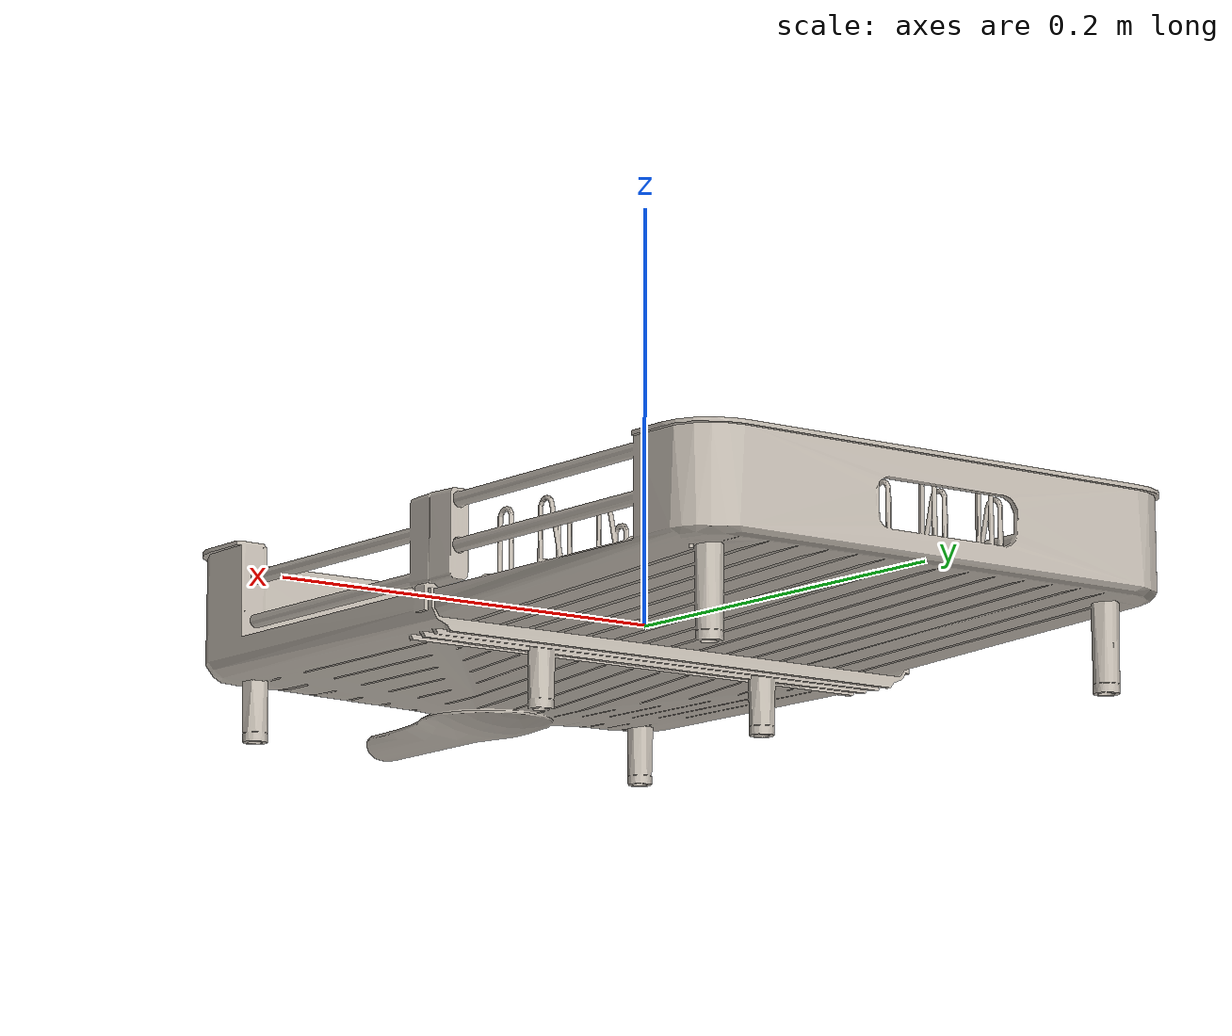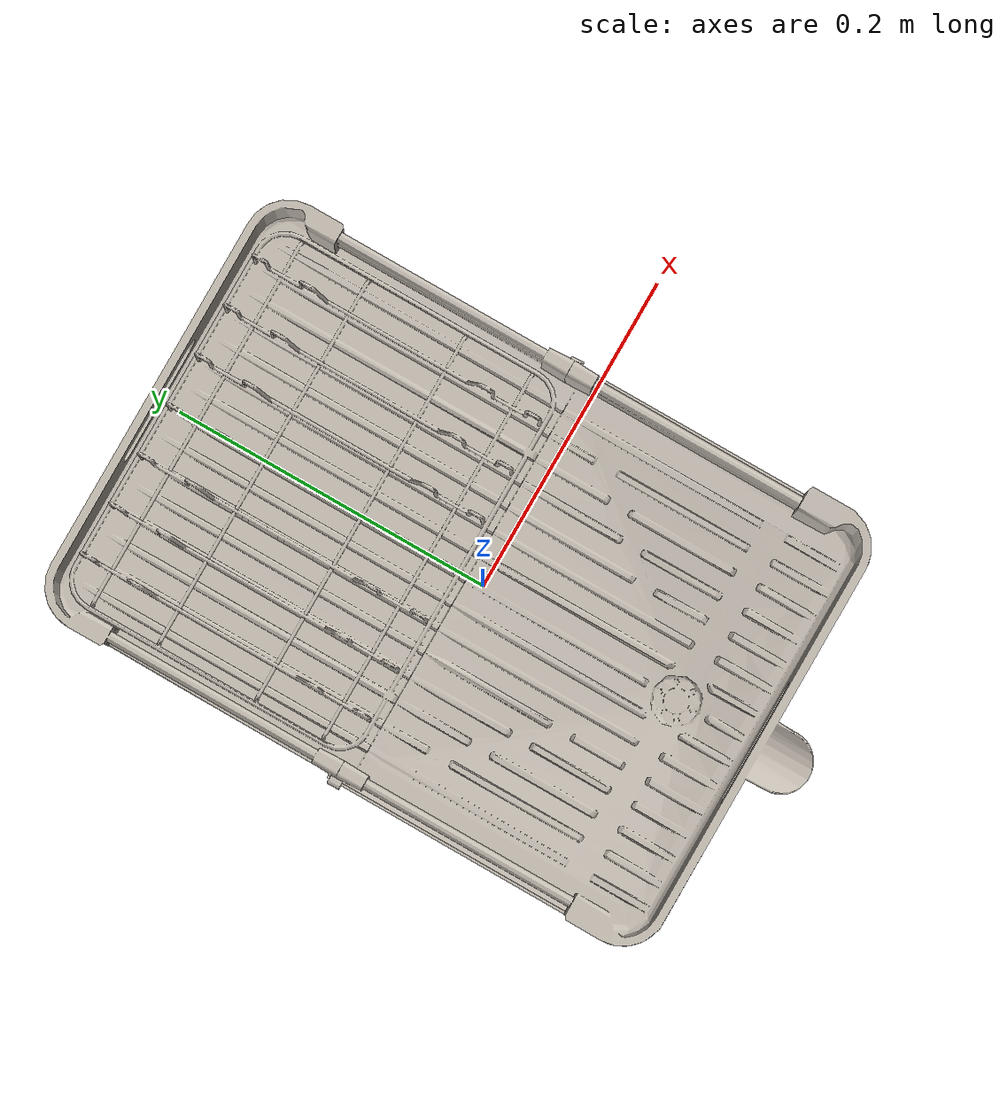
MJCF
<mujoco model="model">
  <option timestep="0.002" gravity="0.0 0.0 -9.81" />
  <compiler angle="radian" />
  <asset>
    <mesh file="visual/DishRack043.obj" name="DishRack043_vis" scale="0.8 0.8 0.8" />
    <texture file="visual/T_BC001.png" name="DishRack043_material" type="2d" />
    <material name="DishRack043_material" rgba="1 1 1 1.0" texture="DishRack043_material" shininess="0.4472135901451111" specular="0.3103448502657381" />
  </asset>
  <default>
    <default class="visual">
      <geom conaffinity="0" contype="0" group="2" type="mesh" density="0" />
    </default>
    <default class="collision">
      <geom group="3" rgba="1 1 1 0.25" density="0" friction="1.2" />
    </default>
    <default class="spawn">
      <geom group="0" rgba="1 1 1 0.5" contype="0" conaffinity="0" />
      <site group="0" rgba="1 1 1 0.5" />
    </default>
    <default class="region">
      <geom group="1" conaffinity="0" contype="0" rgba="0 1 0 0" mass="0" />
    </default>
  </default>
  <worldbody>
    <body>
      <body name="object">
        <geom mesh="DishRack043_vis" type="mesh" class="visual" material="DishRack043_material" group="2" contype="0" conaffinity="0" density="0" mass="0.5" />
        <geom type="box" pos="0.031169728 0.205674056 0.017716304" size="0.00175487063825 0.00131378648803 0.0197576954961" quat="1.0 0.0 0.0 0.0" class="collision" group="3" rgba="0 0 0 0" density="0" friction="1.2" />
        <geom type="box" pos="0.031169728 0.202083112 0.039842328" size="0.00175487063825 0.00208327099681 0.00131378676742" quat="1.0 0.0 0.0 0.0" class="collision" group="3" rgba="0 0 0 0" density="0" friction="1.2" />
        <geom type="box" pos="0.031169728 0.205198696 0.03883036" size="0.00175487063825 0.00131378648803 0.00208327081054" quat="0.9381337761878967 0.3462730050086975 0.0 0.0" class="collision" group="3" rgba="0 0 0 0" density="0" friction="1.2" />
        <geom type="box" pos="0.031169728 0.198713208 0.03883036" size="0.00175487063825 0.00131378648803 0.00208327081054" quat="0.9381337761878967 -0.3462729752063751 -0.0 0.0" class="collision" group="3" rgba="0 0 0 0" density="0" friction="1.2" />
        <geom type="box" pos="0.031169728 0.197106936 0.021901056" size="0.00175487063825 0.00131378648803 0.0155729487539" quat="1.0 0.0 0.0 0.0" class="collision" group="3" rgba="0 0 0 0" density="0" friction="1.2" />
        <geom type="box" pos="0.031169728 0.18682908 0.00721552" size="0.00175487063825 0.0109961859882 0.00131378779188" quat="1.0 0.0 0.0 0.0" class="collision" group="3" rgba="0 0 0 0" density="0" friction="1.2" />
        <geom type="box" pos="0.031169728 0.17424564 0.03883036" size="0.00175487063825 0.00131378648803 0.00208327081054" quat="0.9381337761878967 0.3462730050086975 0.0 0.0" class="collision" group="3" rgba="0 0 0 0" density="0" friction="1.2" />
        <geom type="box" pos="0.031169728 0.171130064 0.039842328" size="0.00175487063825 0.00208327099681 0.00131378676742" quat="1.0 0.0 0.0 0.0" class="collision" group="3" rgba="0 0 0 0" density="0" friction="1.2" />
        <geom type="box" pos="0.031169728 0.174782488 0.021724864" size="0.00175487063825 0.00131378648803 0.0157491385937" quat="1.0 0.0 0.0 0.0" class="collision" group="3" rgba="0 0 0 0" density="0" friction="1.2" />
        <geom type="box" pos="0.031169728 0.16754892 0.03883036" size="0.00175487063825 0.00131378648803 0.00208327081054" quat="0.9381337761878967 -0.3462729752063751 -0.0 0.0" class="collision" group="3" rgba="0 0 0 0" density="0" friction="1.2" />
        <geom type="box" pos="0.129307072 0.1011498 0.017551096" size="0.00343731679022 0.0686911225319 0.00354711599648" quat="1.0 0.0 0.0 0.0" class="collision" group="3" rgba="0 0 0 0" density="0" friction="1.2" />
        <geom type="box" pos="0.031169728 0.162053848 0.021771864" size="0.00175487063825 0.00131378648803 0.0155729487539" quat="0.9922520518302917 -0.12424127757549286 -0.0 0.0" class="collision" group="3" rgba="0 0 0 0" density="0" friction="1.2" />
        <geom type="box" pos="0.031169728 0.111985984 0.00721552" size="0.00175487063825 0.0469583272934 0.00131379216909" quat="1.0 0.0 0.0 0.0" class="collision" group="3" rgba="0 0 0 0" density="0" friction="1.2" />
        <geom type="box" pos="0.031169728 0.061872312 0.021771864" size="0.00175487063825 0.00131378648803 0.0155729487539" quat="0.9922520518302917 0.12424127757549286 0.0 0.0" class="collision" group="3" rgba="0 0 0 0" density="0" friction="1.2" />
        <geom type="box" pos="0.031169728 0.056810848 0.03883036" size="0.00175487063825 0.00131378648803 0.00208327081054" quat="0.9381337761878967 0.3462730050086975 0.0 0.0" class="collision" group="3" rgba="0 0 0 0" density="0" friction="1.2" />
        <geom type="box" pos="0.031169728 0.049736752 0.021724864" size="0.00175487063825 0.00131378648803 0.0157491385937" quat="1.0 0.0 0.0 0.0" class="collision" group="3" rgba="0 0 0 0" density="0" friction="1.2" />
        <geom type="box" pos="0.031169728 0.053806832 0.039842328" size="0.00175487063825 0.00208327099681 0.00131378676742" quat="1.0 0.0 0.0 0.0" class="collision" group="3" rgba="0 0 0 0" density="0" friction="1.2" />
        <geom type="box" pos="0.031169728 0.050691232 0.03883036" size="0.00175487063825 0.00131378648803 0.00208327081054" quat="0.9381337761878967 -0.3462730348110199 -0.0 0.0" class="collision" group="3" rgba="0 0 0 0" density="0" friction="1.2" />
        <geom type="box" pos="0.031169728 0.038107816 0.00721552" size="0.00175487063825 0.0109961859882 0.00131378779188" quat="1.0 0.0 0.0 0.0" class="collision" group="3" rgba="0 0 0 0" density="0" friction="1.2" />
        <geom type="box" pos="0.031169728 0.027178152 0.021901056" size="0.00175487063825 0.00131378648803 0.0155729487539" quat="1.0 0.0 0.0 0.0" class="collision" group="3" rgba="0 0 0 0" density="0" friction="1.2" />
        <geom type="box" pos="0.031169728 0.026223664 0.03883036" size="0.00175487063825 0.00131378648803 0.00208327081054" quat="0.9381337761878967 0.3462730050086975 0.0 0.0" class="collision" group="3" rgba="0 0 0 0" density="0" friction="1.2" />
        <geom type="box" pos="0.129138864 0.010077304 0.023304488" size="0.00554023385048 0.00818573012948 0.0211288020015" quat="1.0 0.0 0.0 0.0" class="collision" group="3" rgba="0 0 0 0" density="0" friction="1.2" />
        <geom type="box" pos="0.031169728 0.019738184 0.03883036" size="0.00175487063825 0.00131378648803 0.00208327081054" quat="0.9381337761878967 -0.3462730348110199 -0.0 0.0" class="collision" group="3" rgba="0 0 0 0" density="0" friction="1.2" />
        <geom type="box" pos="0.031169728 0.022853776 0.039842328" size="0.00175487063825 0.00208327099681 0.00131378676742" quat="1.0 0.0 0.0 0.0" class="collision" group="3" rgba="0 0 0 0" density="0" friction="1.2" />
        <geom type="box" pos="0.031169728 0.018783696 0.017716304" size="0.00175487063825 0.00131378648803 0.0197576954961" quat="1.0 0.0 0.0 0.0" class="collision" group="3" rgba="0 0 0 0" density="0" friction="1.2" />
        <geom type="box" pos="0.063655784 0.018783696 0.017716304" size="0.00159593336284 0.00131378648803 0.0197576954961" quat="1.0 0.0 0.0 0.0" class="collision" group="3" rgba="0 0 0 0" density="0" friction="1.2" />
        <geom type="box" pos="0.063655784 0.022853776 0.039842328" size="0.00159593336284 0.00208327099681 0.00131378676742" quat="1.0 0.0 0.0 0.0" class="collision" group="3" rgba="0 0 0 0" density="0" friction="1.2" />
        <geom type="box" pos="0.063655784 0.019738184 0.03883036" size="0.00159593336284 0.00131378648803 0.00208327081054" quat="0.9381337761878967 -0.3462730348110199 -0.0 0.0" class="collision" group="3" rgba="0 0 0 0" density="0" friction="1.2" />
        <geom type="box" pos="0.063655784 0.026223664 0.03883036" size="0.00159593336284 0.00131378648803 0.00208327081054" quat="0.9381337761878967 0.3462730050086975 0.0 0.0" class="collision" group="3" rgba="0 0 0 0" density="0" friction="1.2" />
        <geom type="box" pos="0.063655784 0.027178152 0.021901056" size="0.00159593336284 0.00131378648803 0.0155729487539" quat="1.0 0.0 0.0 0.0" class="collision" group="3" rgba="0 0 0 0" density="0" friction="1.2" />
        <geom type="box" pos="0.063655784 0.038107816 0.00721552" size="0.00159593336284 0.0109961859882 0.00131378779188" quat="1.0 0.0 0.0 0.0" class="collision" group="3" rgba="0 0 0 0" density="0" friction="1.2" />
        <geom type="box" pos="0.063655784 0.050691232 0.03883036" size="0.00159593336284 0.00131378648803 0.00208327081054" quat="0.9381337761878967 -0.3462730348110199 -0.0 0.0" class="collision" group="3" rgba="0 0 0 0" density="0" friction="1.2" />
        <geom type="box" pos="0.129307072 0.1011498 0.039316536" size="0.00343728922308 0.0686906754971 0.0035470880568" quat="1.0 0.0 0.0 0.0" class="collision" group="3" rgba="0 0 0 0" density="0" friction="1.2" />
        <geom type="box" pos="0.063655784 0.053806832 0.039842328" size="0.00159593336284 0.00208327099681 0.00131378676742" quat="1.0 0.0 0.0 0.0" class="collision" group="3" rgba="0 0 0 0" density="0" friction="1.2" />
        <geom type="box" pos="0.063655784 0.049736752 0.021724864" size="0.00159593336284 0.00131378648803 0.0157491385937" quat="1.0 0.0 0.0 0.0" class="collision" group="3" rgba="0 0 0 0" density="0" friction="1.2" />
        <geom type="box" pos="0.063655784 0.056810848 0.03883036" size="0.00159593336284 0.00131378648803 0.00208327081054" quat="0.9381337761878967 0.3462730050086975 0.0 0.0" class="collision" group="3" rgba="0 0 0 0" density="0" friction="1.2" />
        <geom type="box" pos="0.063655784 0.061872312 0.021771864" size="0.00159593336284 0.00131378648803 0.0155729487539" quat="0.9922520518302917 0.12424127757549286 0.0 0.0" class="collision" group="3" rgba="0 0 0 0" density="0" friction="1.2" />
        <geom type="box" pos="0.063655784 0.111985984 0.00721552" size="0.00159593336284 0.0469583272934 0.00131379216909" quat="1.0 0.0 0.0 0.0" class="collision" group="3" rgba="0 0 0 0" density="0" friction="1.2" />
        <geom type="box" pos="0.063655784 0.162315072 0.021771864" size="0.00159593336284 0.00131378648803 0.0155729487539" quat="0.9922520518302917 -0.12424127757549286 -0.0 0.0" class="collision" group="3" rgba="0 0 0 0" density="0" friction="1.2" />
        <geom type="box" pos="0.063655784 0.167762208 0.03883036" size="0.00159593336284 0.00131378648803 0.00208327081054" quat="0.9381337761878967 -0.3462729752063751 -0.0 0.0" class="collision" group="3" rgba="0 0 0 0" density="0" friction="1.2" />
        <geom type="box" pos="0.063655784 0.17487972 0.021724864" size="0.00159593336284 0.00131378648803 0.0157491385937" quat="1.0 0.0 0.0 0.0" class="collision" group="3" rgba="0 0 0 0" density="0" friction="1.2" />
        <geom type="box" pos="0.063655784 0.171130064 0.039842328" size="0.00159593336284 0.00208327099681 0.00131378676742" quat="1.0 0.0 0.0 0.0" class="collision" group="3" rgba="0 0 0 0" density="0" friction="1.2" />
        <geom type="box" pos="0.063655784 0.17424564 0.03883036" size="0.00159593336284 0.00131378648803 0.00208327081054" quat="0.9381337761878967 0.3462730050086975 0.0 0.0" class="collision" group="3" rgba="0 0 0 0" density="0" friction="1.2" />
        <geom type="box" pos="0.129307072 -0.066154584 0.007342728" size="0.00343727618456 0.0686904728412 0.00354707539082" quat="1.0 0.0 0.0 0.0" class="collision" group="3" rgba="0 0 0 0" density="0" friction="1.2" />
        <geom type="box" pos="0.063655784 0.18682908 0.00721552" size="0.00159593336284 0.0109961859882 0.00131378779188" quat="1.0 0.0 0.0 0.0" class="collision" group="3" rgba="0 0 0 0" density="0" friction="1.2" />
        <geom type="box" pos="0.063655784 0.1971154 0.021901056" size="0.00159593336284 0.00131378648803 0.0155729487539" quat="1.0 0.0 0.0 0.0" class="collision" group="3" rgba="0 0 0 0" density="0" friction="1.2" />
        <geom type="box" pos="0.063655784 0.198713208 0.03883036" size="0.00159593336284 0.00131378648803 0.00208327081054" quat="0.9381337761878967 -0.3462729752063751 -0.0 0.0" class="collision" group="3" rgba="0 0 0 0" density="0" friction="1.2" />
        <geom type="box" pos="0.063655784 0.205198696 0.03883036" size="0.00159593336284 0.00131378648803 0.00208327081054" quat="0.9381337761878967 0.3462730050086975 0.0 0.0" class="collision" group="3" rgba="0 0 0 0" density="0" friction="1.2" />
        <geom type="box" pos="0.063655784 0.202083112 0.039842328" size="0.00159593336284 0.00208327099681 0.00131378676742" quat="1.0 0.0 0.0 0.0" class="collision" group="3" rgba="0 0 0 0" density="0" friction="1.2" />
        <geom type="box" pos="0.063655784 0.205661296 0.017716304" size="0.00159593336284 0.00131378648803 0.0197576954961" quat="1.0 0.0 0.0 0.0" class="collision" group="3" rgba="0 0 0 0" density="0" friction="1.2" />
        <geom type="box" pos="0.095979992 0.205825856 0.017716304" size="0.00180784892291 0.00131378648803 0.0197576954961" quat="1.0 0.0 0.0 0.0" class="collision" group="3" rgba="0 0 0 0" density="0" friction="1.2" />
        <geom type="box" pos="0.095979992 0.201602336 0.039842328" size="0.00180784892291 0.00208327099681 0.00131378676742" quat="1.0 0.0 0.0 0.0" class="collision" group="3" rgba="0 0 0 0" density="0" friction="1.2" />
        <geom type="box" pos="0.095979992 0.2045804 0.03883036" size="0.00180784892291 0.00131378648803 0.00208327081054" quat="0.9381337761878967 0.3462730050086975 0.0 0.0" class="collision" group="3" rgba="0 0 0 0" density="0" friction="1.2" />
        <geom type="box" pos="0.095979992 0.198713208 0.03883036" size="0.00180784892291 0.00131378648803 0.00208327081054" quat="0.9381337761878967 -0.3462729752063751 -0.0 0.0" class="collision" group="3" rgba="0 0 0 0" density="0" friction="1.2" />
        <geom type="box" pos="0.129138864 0.026306432 0.023304488" size="0.0055401481688 0.0081856444478 0.0211284592748" quat="1.0 0.0 0.0 0.0" class="collision" group="3" rgba="0 0 0 0" density="0" friction="1.2" />
        <geom type="box" pos="0.095979992 0.197111096 0.021901056" size="0.00180784892291 0.00131378648803 0.0155729487539" quat="1.0 0.0 0.0 0.0" class="collision" group="3" rgba="0 0 0 0" density="0" friction="1.2" />
        <geom type="box" pos="0.095979992 0.18682908 0.00721552" size="0.00180784892291 0.0109961859882 0.00131378779188" quat="1.0 0.0 0.0 0.0" class="collision" group="3" rgba="0 0 0 0" density="0" friction="1.2" />
        <geom type="box" pos="0.095979992 0.17424564 0.03883036" size="0.00180784892291 0.00131378648803 0.00208327081054" quat="0.9381337761878967 0.3462730050086975 0.0 0.0" class="collision" group="3" rgba="0 0 0 0" density="0" friction="1.2" />
        <geom type="box" pos="0.095979992 0.171130064 0.039842328" size="0.00180784892291 0.00208327099681 0.00131378676742" quat="1.0 0.0 0.0 0.0" class="collision" group="3" rgba="0 0 0 0" density="0" friction="1.2" />
        <geom type="box" pos="0.095979992 0.174617768 0.021724864" size="0.00180784892291 0.00131378648803 0.0157491385937" quat="1.0 0.0 0.0 0.0" class="collision" group="3" rgba="0 0 0 0" density="0" friction="1.2" />
        <geom type="box" pos="0.095979992 0.167582296 0.03883036" size="0.00180784892291 0.00131378648803 0.00208327081054" quat="0.9381337761878967 -0.3462729752063751 -0.0 0.0" class="collision" group="3" rgba="0 0 0 0" density="0" friction="1.2" />
        <geom type="box" pos="0.095979992 0.16252084 0.021771864" size="0.00180784892291 0.00131378648803 0.0155729487539" quat="0.9922520518302917 -0.12424127757549286 -0.0 0.0" class="collision" group="3" rgba="0 0 0 0" density="0" friction="1.2" />
        <geom type="box" pos="0.095979992 0.111985984 0.00721552" size="0.00180784892291 0.0469583272934 0.00131379216909" quat="1.0 0.0 0.0 0.0" class="collision" group="3" rgba="0 0 0 0" density="0" friction="1.2" />
        <geom type="box" pos="0.095979992 0.061872312 0.021771864" size="0.00180784892291 0.00131378648803 0.0155729487539" quat="0.9922520518302917 0.12424127757549286 0.0 0.0" class="collision" group="3" rgba="0 0 0 0" density="0" friction="1.2" />
        <geom type="box" pos="0.095979992 0.056810848 0.03883036" size="0.00180784892291 0.00131378648803 0.00208327081054" quat="0.9381337761878967 0.3462730050086975 0.0 0.0" class="collision" group="3" rgba="0 0 0 0" density="0" friction="1.2" />
        <geom type="box" pos="0.121137552 0.111834456 -0.000459368" size="0.00142243485898 0.0788169622421 0.00158202480524" quat="1.0 0.0 0.0 0.0" class="collision" group="3" rgba="0 0 0 0" density="0" friction="1.2" />
        <geom type="box" pos="0.095979992 0.049736752 0.021724864" size="0.00180784892291 0.00131378648803 0.0157491385937" quat="1.0 0.0 0.0 0.0" class="collision" group="3" rgba="0 0 0 0" density="0" friction="1.2" />
        <geom type="box" pos="0.095979992 0.053806832 0.039842328" size="0.00180784892291 0.00208327099681 0.00131378676742" quat="1.0 0.0 0.0 0.0" class="collision" group="3" rgba="0 0 0 0" density="0" friction="1.2" />
        <geom type="box" pos="0.095979992 0.050691232 0.03883036" size="0.00180784892291 0.00131378648803 0.00208327081054" quat="0.9381337761878967 -0.3462730348110199 -0.0 0.0" class="collision" group="3" rgba="0 0 0 0" density="0" friction="1.2" />
        <geom type="box" pos="0.095979992 0.038107816 0.00721552" size="0.00180784892291 0.0109961859882 0.00131378779188" quat="1.0 0.0 0.0 0.0" class="collision" group="3" rgba="0 0 0 0" density="0" friction="1.2" />
        <geom type="box" pos="0.095979992 0.027178152 0.021901056" size="0.00180784892291 0.00131378648803 0.0155729487539" quat="1.0 0.0 0.0 0.0" class="collision" group="3" rgba="0 0 0 0" density="0" friction="1.2" />
        <geom type="box" pos="0.095979992 0.026223664 0.03883036" size="0.00180784892291 0.00131378648803 0.00208327081054" quat="0.9381337761878967 0.3462730050086975 0.0 0.0" class="collision" group="3" rgba="0 0 0 0" density="0" friction="1.2" />
        <geom type="box" pos="0.095979992 0.019738184 0.03883036" size="0.00180784892291 0.00131378648803 0.00208327081054" quat="0.9381337761878967 -0.3462730348110199 -0.0 0.0" class="collision" group="3" rgba="0 0 0 0" density="0" friction="1.2" />
        <geom type="box" pos="0.095979992 0.022853776 0.039842328" size="0.00180784892291 0.00208327099681 0.00131378676742" quat="1.0 0.0 0.0 0.0" class="collision" group="3" rgba="0 0 0 0" density="0" friction="1.2" />
        <geom type="box" pos="-0.001808912 0.016273344 -0.000459368" size="0.107642388344 0.00151247680188 0.00158202480524" quat="1.0 0.0 0.0 0.0" class="collision" group="3" rgba="0 0 0 0" density="0" friction="1.2" />
        <geom type="box" pos="0.095979992 0.018783696 0.017716304" size="0.00180784892291 0.00131378648803 0.0197576954961" quat="1.0 0.0 0.0 0.0" class="collision" group="3" rgba="0 0 0 0" density="0" friction="1.2" />
        <geom type="box" pos="0.001556016 -0.179855552 0.015250488" size="0.123519229889 0.00339460074901 0.0297877907753" quat="1.0 0.0 0.0 0.0" class="collision" group="3" rgba="0 0 0 0" density="0" friction="1.2" />
        <geom type="box" pos="0.120060272 0.028745744 -0.000459368" size="0.00447872132063 0.00304220579564 0.00158202480524" quat="0.9153963327407837 0.0 0.0 0.40255382657051086" class="collision" group="3" rgba="0 0 0 0" density="0" friction="1.2" />
        <geom type="box" pos="0.115841976 0.021728792 -0.000459368" size="0.00447872132063 0.00304220598191 0.00158202480524" quat="0.9722712635993958 0.0 0.0 0.23385590314865112" class="collision" group="3" rgba="0 0 0 0" density="0" friction="1.2" />
        <geom type="box" pos="0.109514552 0.017429376 -0.000459368" size="0.00447872132063 0.00304220579564 0.00158202480524" quat="1.0 0.0 0.0 0.0" class="collision" group="3" rgba="0 0 0 0" density="0" friction="1.2" />
        <geom type="box" pos="-0.001595104 0.114214488 -0.006542016" size="0.13858397007 0.101753473282 0.00638917386532" quat="1.0 0.0 0.0 0.0" class="collision" group="3" rgba="0 0 0 0" density="0" friction="1.2" />
        <geom type="box" pos="-0.137399672 -0.056320592 -0.006685176" size="0.00171609632671 0.0784195244312 0.00785090699792" quat="1.0 0.0 0.0 0.0" class="collision" group="3" rgba="0 0 0 0" density="0" friction="1.2" />
        <geom type="box" pos="0.135540968 -0.059338224 -0.007511064" size="0.00171609539539 0.0754018247127 0.00702501237392" quat="1.0 0.0 0.0 0.0" class="collision" group="3" rgba="0 0 0 0" density="0" friction="1.2" />
        <geom type="box" pos="-0.001595104 -0.078340352 -0.01990592" size="0.138583755493 0.10222414732 0.0061403285712" quat="1.0 0.0 0.0 0.0" class="collision" group="3" rgba="0 0 0 0" density="0" friction="1.2" />
        <geom type="box" pos="0.129307072 -0.06553656 0.028290344" size="0.00343721844256 0.0686895430088 0.00354701764882" quat="1.0 0.0 0.0 0.0" class="collision" group="3" rgba="0 0 0 0" density="0" friction="1.2" />
        <geom type="box" pos="-0.000948384 -0.158495888 -0.03179764" size="0.0320948511362 0.0572251081467 0.00373337455094" quat="1.0 0.0 0.0 0.0" class="collision" group="3" rgba="0 0 0 0" density="0" friction="1.2" />
        <geom type="box" pos="-0.0661658 0.004678904 -0.032827944" size="0.00597956180572 0.00593638084828 0.0129646763205" quat="1.0 0.0 0.0 0.0" class="collision" group="3" rgba="0 0 0 0" density="0" friction="1.2" />
        <geom type="box" pos="0.128863792 0.203818536 0.015250488" size="0.00434559099376 0.0136276826262 0.0297861814499" quat="0.9338935613632202 0.0 0.0 0.35755112767219543" class="collision" group="3" rgba="0 0 0 0" density="0" friction="1.2" />
        <geom type="box" pos="0.062365688 0.004678904 -0.032827944" size="0.00597955733538 0.00593637675047 0.0129646673798" quat="1.0 0.0 0.0 0.0" class="collision" group="3" rgba="0 0 0 0" density="0" friction="1.2" />
        <geom type="box" pos="0.111136608 -0.156300904 -0.032827944" size="0.00597955323756 0.00593637228012 0.0129646599292" quat="1.0 0.0 0.0 0.0" class="collision" group="3" rgba="0 0 0 0" density="0" friction="1.2" />
        <geom type="box" pos="-0.113092824 -0.156300904 -0.032827944" size="0.00597954876721 0.0059363681823 0.0129646509886" quat="1.0 0.0 0.0 0.0" class="collision" group="3" rgba="0 0 0 0" density="0" friction="1.2" />
        <geom type="box" pos="-0.113092824 0.19082316 -0.024889864" size="0.00597954466939 0.00593636371196 0.0209034204483" quat="1.0 0.0 0.0 0.0" class="collision" group="3" rgba="0 0 0 0" density="0" friction="1.2" />
        <geom type="box" pos="0.111136608 0.19082316 -0.024889864" size="0.00597954019904 0.00593635961413 0.0209034025669" quat="1.0 0.0 0.0 0.0" class="collision" group="3" rgba="0 0 0 0" density="0" friction="1.2" />
        <geom type="box" pos="-0.120379464 0.188258384 -0.001816184" size="0.00112094851211 0.00115728173405 0.00792363137007" quat="1.0 0.0 0.0 0.0" class="collision" group="3" rgba="0 0 0 0" density="0" friction="1.2" />
        <geom type="box" pos="-0.001541224 0.188176584 0.004769888" size="0.119256734848 0.00115728173405 0.00121049694717" quat="1.0 0.0 0.0 0.0" class="collision" group="3" rgba="0 0 0 0" density="0" friction="1.2" />
        <geom type="box" pos="0.118373792 0.188258384 -0.001816184" size="0.00112094851211 0.00115728173405 0.00792363137007" quat="1.0 0.0 0.0 0.0" class="collision" group="3" rgba="0 0 0 0" density="0" friction="1.2" />
        <geom type="box" pos="0.118373792 0.143786952 -0.001816184" size="0.00112094851211 0.00115728173405 0.00792363137007" quat="1.0 0.0 0.0 0.0" class="collision" group="3" rgba="0 0 0 0" density="0" friction="1.2" />
        <geom type="box" pos="-0.001541224 0.144090736 0.004769888" size="0.119256734848 0.00115728173405 0.00121049694717" quat="1.0 0.0 0.0 0.0" class="collision" group="3" rgba="0 0 0 0" density="0" friction="1.2" />
        <geom type="box" pos="0.131538272 0.178824592 0.015250488" size="0.00793942064047 0.0133936792612 0.02978746593" quat="1.0 0.0 0.0 0.0" class="collision" group="3" rgba="0 0 0 0" density="0" friction="1.2" />
        <geom type="box" pos="-0.120379464 0.143786952 -0.001816184" size="0.00112094851211 0.00115728173405 0.00792363137007" quat="1.0 0.0 0.0 0.0" class="collision" group="3" rgba="0 0 0 0" density="0" friction="1.2" />
        <geom type="box" pos="-0.120379464 0.07955412 -0.001816184" size="0.00112094851211 0.00115728173405 0.00792363137007" quat="1.0 0.0 0.0 0.0" class="collision" group="3" rgba="0 0 0 0" density="0" friction="1.2" />
        <geom type="box" pos="-0.001541224 0.079890432 0.004769888" size="0.119256734848 0.00115728173405 0.00121049694717" quat="1.0 0.0 0.0 0.0" class="collision" group="3" rgba="0 0 0 0" density="0" friction="1.2" />
        <geom type="box" pos="0.118373792 0.07955412 -0.001816184" size="0.00112094851211 0.00115728173405 0.00792363137007" quat="1.0 0.0 0.0 0.0" class="collision" group="3" rgba="0 0 0 0" density="0" friction="1.2" />
        <geom type="box" pos="0.118373792 0.03623252 -0.001816184" size="0.00112094851211 0.00115728173405 0.00792363137007" quat="1.0 0.0 0.0 0.0" class="collision" group="3" rgba="0 0 0 0" density="0" friction="1.2" />
        <geom type="box" pos="-0.001541224 0.036150712 0.004769888" size="0.119256734848 0.00115728173405 0.00121049694717" quat="1.0 0.0 0.0 0.0" class="collision" group="3" rgba="0 0 0 0" density="0" friction="1.2" />
        <geom type="box" pos="-0.120379464 0.03623252 -0.001816184" size="0.00112094851211 0.00115728173405 0.00792363137007" quat="1.0 0.0 0.0 0.0" class="collision" group="3" rgba="0 0 0 0" density="0" friction="1.2" />
        <geom type="box" pos="0.109514552 0.20711336 -0.000459368" size="0.00447872132063 0.00304220579564 0.00158202480524" quat="1.0 0.0 0.0 0.0" class="collision" group="3" rgba="0 0 0 0" density="0" friction="1.2" />
        <geom type="box" pos="0.115841976 0.20281396 -0.000459368" size="0.00447872132063 0.00304220579564 0.00158202480524" quat="0.9722712635993958 0.0 -0.0 -0.23385585844516754" class="collision" group="3" rgba="0 0 0 0" density="0" friction="1.2" />
        <geom type="box" pos="0.120060272 0.195796976 -0.000459368" size="0.00447872132063 0.00304220598191 0.00158202480524" quat="0.9153962731361389 0.0 -0.0 -0.40255388617515564" class="collision" group="3" rgba="0 0 0 0" density="0" friction="1.2" />
        <geom type="box" pos="0.001556016 0.213304376 0.015250488" size="0.12351731062 0.00339454077184 0.0297873109579" quat="1.0 0.0 0.0 0.0" class="collision" group="3" rgba="0 0 0 0" density="0" friction="1.2" />
        <geom type="box" pos="0.131538272 -0.145375768 0.015250488" size="0.00793937817216 0.0133935943246 0.0297872930765" quat="1.0 0.0 0.0 0.0" class="collision" group="3" rgba="0 0 0 0" density="0" friction="1.2" />
        <geom type="box" pos="-0.001808912 0.208269384 -0.000459368" size="0.107642388344 0.00151247680188 0.00158202480524" quat="1.0 0.0 0.0 0.0" class="collision" group="3" rgba="0 0 0 0" density="0" friction="1.2" />
        <geom type="box" pos="-0.121945568 0.195796976 -0.000459368" size="0.00447872132063 0.00304220598191 0.00158202480524" quat="0.9153962731361389 0.0 0.0 0.40255388617515564" class="collision" group="3" rgba="0 0 0 0" density="0" friction="1.2" />
        <geom type="box" pos="-0.117727272 0.20281396 -0.000459368" size="0.00447872132063 0.00304220579564 0.00158202480524" quat="0.9722712635993958 0.0 0.0 0.23385585844516754" class="collision" group="3" rgba="0 0 0 0" density="0" friction="1.2" />
        <geom type="box" pos="-0.11139984 0.20711336 -0.000459368" size="0.00447872132063 0.00304220579564 0.00158202480524" quat="1.0 0.0 0.0 0.0" class="collision" group="3" rgba="0 0 0 0" density="0" friction="1.2" />
        <geom type="box" pos="-0.123022848 0.111834456 -0.000459368" size="0.00142243485898 0.0788169622421 0.00158202480524" quat="1.0 0.0 0.0 0.0" class="collision" group="3" rgba="0 0 0 0" density="0" friction="1.2" />
        <geom type="box" pos="-0.11139984 0.017429376 -0.000459368" size="0.00447872132063 0.00304220579564 0.00158202480524" quat="1.0 0.0 0.0 0.0" class="collision" group="3" rgba="0 0 0 0" density="0" friction="1.2" />
        <geom type="box" pos="-0.117727272 0.021728792 -0.000459368" size="0.00447872132063 0.00304220579564 0.00158202480524" quat="0.9722712635993958 0.0 -0.0 -0.23385585844516754" class="collision" group="3" rgba="0 0 0 0" density="0" friction="1.2" />
        <geom type="box" pos="-0.121945568 0.028745744 -0.000459368" size="0.00447872132063 0.00304220598191 0.00158202480524" quat="0.9153962731361389 0.0 -0.0 -0.40255388617515564" class="collision" group="3" rgba="0 0 0 0" density="0" friction="1.2" />
        <geom type="box" pos="-0.033404848 0.20575316 0.017716304" size="0.00180784873664 0.00131378648803 0.0197576954961" quat="1.0 0.0 0.0 0.0" class="collision" group="3" rgba="0 0 0 0" density="0" friction="1.2" />
        <geom type="box" pos="-0.033404856 0.202083112 0.039842328" size="0.00180784873664 0.00208327099681 0.00131378676742" quat="1.0 0.0 0.0 0.0" class="collision" group="3" rgba="0 0 0 0" density="0" friction="1.2" />
        <geom type="box" pos="-0.133213984 0.178824568 0.015250488" size="0.00801560878754 0.0133935332299 0.0297871738672" quat="1.0 0.0 0.0 0.0" class="collision" group="3" rgba="0 0 0 0" density="0" friction="1.2" />
        <geom type="box" pos="-0.033404856 0.205198696 0.03883036" size="0.00180784873664 0.00131378648803 0.00208327081054" quat="0.9381337761878967 0.3462730050086975 0.0 0.0" class="collision" group="3" rgba="0 0 0 0" density="0" friction="1.2" />
        <geom type="box" pos="-0.033404856 0.198713208 0.03883036" size="0.00180784873664 0.00131378648803 0.00208327081054" quat="0.9381337761878967 -0.3462729752063751 -0.0 0.0" class="collision" group="3" rgba="0 0 0 0" density="0" friction="1.2" />
        <geom type="box" pos="-0.033404856 0.196941888 0.021901056" size="0.00180784873664 0.00131378648803 0.0155729487539" quat="1.0 0.0 0.0 0.0" class="collision" group="3" rgba="0 0 0 0" density="0" friction="1.2" />
        <geom type="box" pos="-0.033404856 0.18682908 0.00721552" size="0.00180784873664 0.0109961859882 0.00131378779188" quat="1.0 0.0 0.0 0.0" class="collision" group="3" rgba="0 0 0 0" density="0" friction="1.2" />
        <geom type="box" pos="-0.033404856 0.17424564 0.03883036" size="0.00180784873664 0.00131378648803 0.00208327081054" quat="0.9381337761878967 0.3462730050086975 0.0 0.0" class="collision" group="3" rgba="0 0 0 0" density="0" friction="1.2" />
        <geom type="box" pos="-0.033404856 0.171130064 0.039842328" size="0.00180784873664 0.00208327099681 0.00131378676742" quat="1.0 0.0 0.0 0.0" class="collision" group="3" rgba="0 0 0 0" density="0" friction="1.2" />
        <geom type="box" pos="-0.033404856 0.174560952 0.021724864" size="0.00180784873664 0.00131378648803 0.0157491385937" quat="1.0 0.0 0.0 0.0" class="collision" group="3" rgba="0 0 0 0" density="0" friction="1.2" />
        <geom type="box" pos="-0.033404856 0.168126032 0.03883036" size="0.00180784873664 0.00131378648803 0.00208327081054" quat="0.9381337761878967 -0.3462729752063751 -0.0 0.0" class="collision" group="3" rgba="0 0 0 0" density="0" friction="1.2" />
        <geom type="box" pos="-0.033404856 0.162331072 0.021771864" size="0.00180784873664 0.00131378648803 0.0155729487539" quat="0.9922520518302917 -0.12424127757549286 -0.0 0.0" class="collision" group="3" rgba="0 0 0 0" density="0" friction="1.2" />
        <geom type="box" pos="-0.033404856 0.111985984 0.00721552" size="0.00180784873664 0.0469583272934 0.00131379216909" quat="1.0 0.0 0.0 0.0" class="collision" group="3" rgba="0 0 0 0" density="0" friction="1.2" />
        <geom type="box" pos="-0.12996828 0.20313928 0.015991616" size="0.00434559099376 0.0136276826262 0.0297861814499" quat="0.9338935613632202 0.0 -0.0 -0.35755112767219543" class="collision" group="3" rgba="0 0 0 0" density="0" friction="1.2" />
        <geom type="box" pos="-0.033404856 0.061872312 0.021771864" size="0.00180784873664 0.00131378648803 0.0155729487539" quat="0.9922520518302917 0.12424127757549286 0.0 0.0" class="collision" group="3" rgba="0 0 0 0" density="0" friction="1.2" />
        <geom type="box" pos="-0.033404856 0.056810848 0.03883036" size="0.00180784873664 0.00131378648803 0.00208327081054" quat="0.9381337761878967 0.3462730050086975 0.0 0.0" class="collision" group="3" rgba="0 0 0 0" density="0" friction="1.2" />
        <geom type="box" pos="-0.033404856 0.049736752 0.021724864" size="0.00180784873664 0.00131378648803 0.0157491385937" quat="1.0 0.0 0.0 0.0" class="collision" group="3" rgba="0 0 0 0" density="0" friction="1.2" />
        <geom type="box" pos="-0.033404856 0.053806832 0.039842328" size="0.00180784873664 0.00208327099681 0.00131378676742" quat="1.0 0.0 0.0 0.0" class="collision" group="3" rgba="0 0 0 0" density="0" friction="1.2" />
        <geom type="box" pos="-0.033404856 0.050691232 0.03883036" size="0.00180784873664 0.00131378648803 0.00208327081054" quat="0.9381337761878967 -0.3462730348110199 -0.0 0.0" class="collision" group="3" rgba="0 0 0 0" density="0" friction="1.2" />
        <geom type="box" pos="-0.033404856 0.038107816 0.00721552" size="0.00180784873664 0.0109961859882 0.00131378779188" quat="1.0 0.0 0.0 0.0" class="collision" group="3" rgba="0 0 0 0" density="0" friction="1.2" />
        <geom type="box" pos="-0.033404856 0.027178152 0.021901056" size="0.00180784873664 0.00131378648803 0.0155729487539" quat="1.0 0.0 0.0 0.0" class="collision" group="3" rgba="0 0 0 0" density="0" friction="1.2" />
        <geom type="box" pos="-0.033404856 0.026223664 0.03883036" size="0.00180784873664 0.00131378648803 0.00208327081054" quat="0.9381337761878967 0.3462730050086975 0.0 0.0" class="collision" group="3" rgba="0 0 0 0" density="0" friction="1.2" />
        <geom type="box" pos="-0.033404856 0.019738184 0.03883036" size="0.00180784873664 0.00131378648803 0.00208327081054" quat="0.9381337761878967 -0.3462730348110199 -0.0 0.0" class="collision" group="3" rgba="0 0 0 0" density="0" friction="1.2" />
        <geom type="box" pos="-0.033404856 0.022853776 0.039842328" size="0.00180784873664 0.00208327099681 0.00131378676742" quat="1.0 0.0 0.0 0.0" class="collision" group="3" rgba="0 0 0 0" density="0" friction="1.2" />
        <geom type="box" pos="-0.131776328 -0.171415016 0.015250488" size="0.00434559099376 0.0136276826262 0.0297861814499" quat="0.9338935613632202 0.0 0.0 0.35755112767219543" class="collision" group="3" rgba="0 0 0 0" density="0" friction="1.2" />
        <geom type="box" pos="-0.033404848 0.018783696 0.017716304" size="0.00180784873664 0.00131378648803 0.0197576954961" quat="1.0 0.0 0.0 0.0" class="collision" group="3" rgba="0 0 0 0" density="0" friction="1.2" />
        <geom type="box" pos="-0.098303 0.018783696 0.017716304" size="0.00189261548221 0.00131378648803 0.0197576954961" quat="1.0 0.0 0.0 0.0" class="collision" group="3" rgba="0 0 0 0" density="0" friction="1.2" />
        <geom type="box" pos="-0.098303008 0.022853776 0.039842328" size="0.00189261548221 0.00208327099681 0.00131378676742" quat="1.0 0.0 0.0 0.0" class="collision" group="3" rgba="0 0 0 0" density="0" friction="1.2" />
        <geom type="box" pos="-0.098303008 0.019738184 0.03883036" size="0.00189261548221 0.00131378648803 0.00208327081054" quat="0.9381337761878967 -0.3462730348110199 -0.0 0.0" class="collision" group="3" rgba="0 0 0 0" density="0" friction="1.2" />
        <geom type="box" pos="-0.098303008 0.026223664 0.03883036" size="0.00189261548221 0.00131378648803 0.00208327081054" quat="0.9381337761878967 0.3462730050086975 0.0 0.0" class="collision" group="3" rgba="0 0 0 0" density="0" friction="1.2" />
        <geom type="box" pos="-0.098303008 0.027178152 0.021901056" size="0.00189261548221 0.00131378648803 0.0155729487539" quat="1.0 0.0 0.0 0.0" class="collision" group="3" rgba="0 0 0 0" density="0" friction="1.2" />
        <geom type="box" pos="-0.098303008 0.038107816 0.00721552" size="0.00189261548221 0.0109961859882 0.00131378779188" quat="1.0 0.0 0.0 0.0" class="collision" group="3" rgba="0 0 0 0" density="0" friction="1.2" />
        <geom type="box" pos="-0.098303008 0.050691232 0.03883036" size="0.00189261548221 0.00131378648803 0.00208327081054" quat="0.9381337761878967 -0.3462730348110199 -0.0 0.0" class="collision" group="3" rgba="0 0 0 0" density="0" friction="1.2" />
        <geom type="box" pos="-0.098303008 0.053806832 0.039842328" size="0.00189261548221 0.00208327099681 0.00131378676742" quat="1.0 0.0 0.0 0.0" class="collision" group="3" rgba="0 0 0 0" density="0" friction="1.2" />
        <geom type="box" pos="-0.098303008 0.049736752 0.021724864" size="0.00189261548221 0.00131378648803 0.0157491385937" quat="1.0 0.0 0.0 0.0" class="collision" group="3" rgba="0 0 0 0" density="0" friction="1.2" />
        <geom type="box" pos="-0.13329024 -0.145375752 0.015250488" size="0.0079392708838 0.0133933797479 0.0297868639231" quat="1.0 0.0 0.0 0.0" class="collision" group="3" rgba="0 0 0 0" density="0" friction="1.2" />
        <geom type="box" pos="-0.098303008 0.056810848 0.03883036" size="0.00189261548221 0.00131378648803 0.00208327081054" quat="0.9381337761878967 0.3462730050086975 0.0 0.0" class="collision" group="3" rgba="0 0 0 0" density="0" friction="1.2" />
        <geom type="box" pos="-0.098303008 0.061872312 0.021771864" size="0.00189261548221 0.00131378648803 0.0155729487539" quat="0.9922520518302917 0.12424127757549286 0.0 0.0" class="collision" group="3" rgba="0 0 0 0" density="0" friction="1.2" />
        <geom type="box" pos="-0.098128944 0.111985984 0.00721552" size="0.00189261548221 0.0469583272934 0.00131379216909" quat="1.0 0.0 0.0 0.0" class="collision" group="3" rgba="0 0 0 0" density="0" friction="1.2" />
        <geom type="box" pos="-0.098128944 0.16241552 0.021771864" size="0.00189261548221 0.00131378648803 0.0155729487539" quat="0.9922520518302917 -0.12424127757549286 -0.0 0.0" class="collision" group="3" rgba="0 0 0 0" density="0" friction="1.2" />
        <geom type="box" pos="-0.09789396 0.168126032 0.03883036" size="0.00189261548221 0.00131378648803 0.00208327081054" quat="0.9381337761878967 -0.3462729752063751 -0.0 0.0" class="collision" group="3" rgba="0 0 0 0" density="0" friction="1.2" />
        <geom type="box" pos="-0.098128944 0.174853016 0.021724864" size="0.00189261548221 0.00131378648803 0.0157491385937" quat="1.0 0.0 0.0 0.0" class="collision" group="3" rgba="0 0 0 0" density="0" friction="1.2" />
        <geom type="box" pos="-0.09789396 0.171130064 0.039842328" size="0.00189261548221 0.00208327099681 0.00131378676742" quat="1.0 0.0 0.0 0.0" class="collision" group="3" rgba="0 0 0 0" density="0" friction="1.2" />
        <geom type="box" pos="-0.09789396 0.17363256 0.03883036" size="0.00189261548221 0.00131378648803 0.00208327081054" quat="0.9381337761878967 0.3462730050086975 0.0 0.0" class="collision" group="3" rgba="0 0 0 0" density="0" friction="1.2" />
        <geom type="box" pos="-0.098128944 0.18682908 0.00721552" size="0.00189261548221 0.0109961859882 0.00131378779188" quat="1.0 0.0 0.0 0.0" class="collision" group="3" rgba="0 0 0 0" density="0" friction="1.2" />
        <geom type="box" pos="-0.09816668 0.197115376 0.021901056" size="0.00189261548221 0.00131378648803 0.0155729487539" quat="1.0 0.0 0.0 0.0" class="collision" group="3" rgba="0 0 0 0" density="0" friction="1.2" />
        <geom type="box" pos="-0.131059032 -0.066154584 0.02793192" size="0.00343710258603 0.0686876952648 0.00354690179228" quat="1.0 0.0 0.0 0.0" class="collision" group="3" rgba="0 0 0 0" density="0" friction="1.2" />
        <geom type="box" pos="-0.098128944 0.198713208 0.03883036" size="0.00189261548221 0.00131378648803 0.00208327081054" quat="0.9381337761878967 -0.3462729752063751 -0.0 0.0" class="collision" group="3" rgba="0 0 0 0" density="0" friction="1.2" />
        <geom type="box" pos="-0.098224232 0.205198696 0.03883036" size="0.00189261548221 0.00131378648803 0.00208327081054" quat="0.9381337761878967 0.3462730050086975 0.0 0.0" class="collision" group="3" rgba="0 0 0 0" density="0" friction="1.2" />
        <geom type="box" pos="-0.098224232 0.202083112 0.039842328" size="0.00189261548221 0.00208327099681 0.00131378676742" quat="1.0 0.0 0.0 0.0" class="collision" group="3" rgba="0 0 0 0" density="0" friction="1.2" />
        <geom type="box" pos="-0.098060672 0.20529816 0.017716304" size="0.00189261548221 0.00131378648803 0.0197576954961" quat="1.0 0.0 0.0 0.0" class="collision" group="3" rgba="0 0 0 0" density="0" friction="1.2" />
        <geom type="box" pos="-0.066137288 0.205627632 0.017716304" size="0.00201976411044 0.00131378648803 0.0197576954961" quat="1.0 0.0 0.0 0.0" class="collision" group="3" rgba="0 0 0 0" density="0" friction="1.2" />
        <geom type="box" pos="-0.066407608 0.202083112 0.039842328" size="0.00201976411044 0.00208327099681 0.00131378676742" quat="1.0 0.0 0.0 0.0" class="collision" group="3" rgba="0 0 0 0" density="0" friction="1.2" />
        <geom type="box" pos="-0.066407608 0.205198696 0.03883036" size="0.00201976411044 0.00131378648803 0.00208327081054" quat="0.9381337761878967 0.3462730050086975 0.0 0.0" class="collision" group="3" rgba="0 0 0 0" density="0" friction="1.2" />
        <geom type="box" pos="-0.066407608 0.198713208 0.03883036" size="0.00201976411044 0.00131378648803 0.00208327081054" quat="0.9381337761878967 -0.3462729752063751 -0.0 0.0" class="collision" group="3" rgba="0 0 0 0" density="0" friction="1.2" />
        <geom type="box" pos="-0.066255424 0.197022048 0.021901056" size="0.00201976411044 0.00131378648803 0.0155729487539" quat="1.0 0.0 0.0 0.0" class="collision" group="3" rgba="0 0 0 0" density="0" friction="1.2" />
        <geom type="box" pos="-0.066227664 0.18682908 0.00721552" size="0.00201976411044 0.0109961859882 0.00131378779188" quat="1.0 0.0 0.0 0.0" class="collision" group="3" rgba="0 0 0 0" density="0" friction="1.2" />
        <geom type="box" pos="-0.130890832 0.026306432 0.023304488" size="0.00553980097174 0.00818529725075 0.0211270704866" quat="1.0 0.0 0.0 0.0" class="collision" group="3" rgba="0 0 0 0" density="0" friction="1.2" />
        <geom type="box" pos="-0.066413072 0.17424564 0.03883036" size="0.00201976411044 0.00131378648803 0.00208327081054" quat="0.9381337761878967 0.3462730050086975 0.0 0.0" class="collision" group="3" rgba="0 0 0 0" density="0" friction="1.2" />
        <geom type="box" pos="-0.066413072 0.171130064 0.039842328" size="0.00201976411044 0.00208327099681 0.00131378676742" quat="1.0 0.0 0.0 0.0" class="collision" group="3" rgba="0 0 0 0" density="0" friction="1.2" />
        <geom type="box" pos="-0.06622384 0.174673248 0.021724864" size="0.00201976411044 0.00131378648803 0.0157491385937" quat="1.0 0.0 0.0 0.0" class="collision" group="3" rgba="0 0 0 0" density="0" friction="1.2" />
        <geom type="box" pos="-0.066413072 0.16770656 0.03883036" size="0.00201976411044 0.00131378648803 0.00208327081054" quat="0.9381337761878967 -0.3462729752063751 -0.0 0.0" class="collision" group="3" rgba="0 0 0 0" density="0" friction="1.2" />
        <geom type="box" pos="-0.066346648 0.162300656 0.021771864" size="0.00201976411044 0.00131378648803 0.0155729487539" quat="0.9922520518302917 -0.12424127757549286 -0.0 0.0" class="collision" group="3" rgba="0 0 0 0" density="0" friction="1.2" />
        <geom type="box" pos="-0.066227664 0.111985984 0.00721552" size="0.00201976411044 0.0469583272934 0.00131379216909" quat="1.0 0.0 0.0 0.0" class="collision" group="3" rgba="0 0 0 0" density="0" friction="1.2" />
        <geom type="box" pos="-0.066656528 0.061872312 0.021771864" size="0.00201976411044 0.00131378648803 0.0155729487539" quat="0.9922520518302917 0.12424127757549286 0.0 0.0" class="collision" group="3" rgba="0 0 0 0" density="0" friction="1.2" />
        <geom type="box" pos="-0.066656528 0.056810848 0.03883036" size="0.00201976411044 0.00131378648803 0.00208327081054" quat="0.9381337761878967 0.3462730050086975 0.0 0.0" class="collision" group="3" rgba="0 0 0 0" density="0" friction="1.2" />
        <geom type="box" pos="-0.066656528 0.049736752 0.021724864" size="0.00201976411044 0.00131378648803 0.0157491385937" quat="1.0 0.0 0.0 0.0" class="collision" group="3" rgba="0 0 0 0" density="0" friction="1.2" />
        <geom type="box" pos="-0.066656528 0.053806832 0.039842328" size="0.00201976411044 0.00208327099681 0.00131378676742" quat="1.0 0.0 0.0 0.0" class="collision" group="3" rgba="0 0 0 0" density="0" friction="1.2" />
        <geom type="box" pos="-0.131059048 -0.066154584 0.007342728" size="0.00343707464636 0.06868724823 0.00354687385261" quat="1.0 0.0 0.0 0.0" class="collision" group="3" rgba="0 0 0 0" density="0" friction="1.2" />
        <geom type="box" pos="-0.066656528 0.050691232 0.03883036" size="0.00201976411044 0.00131378648803 0.00208327081054" quat="0.9381337761878967 -0.3462730348110199 -0.0 0.0" class="collision" group="3" rgba="0 0 0 0" density="0" friction="1.2" />
        <geom type="box" pos="-0.066656528 0.038107816 0.00721552" size="0.00201976411044 0.0109961859882 0.00131378779188" quat="1.0 0.0 0.0 0.0" class="collision" group="3" rgba="0 0 0 0" density="0" friction="1.2" />
        <geom type="box" pos="-0.066656528 0.027178152 0.021901056" size="0.00201976411044 0.00131378648803 0.0155729487539" quat="1.0 0.0 0.0 0.0" class="collision" group="3" rgba="0 0 0 0" density="0" friction="1.2" />
        <geom type="box" pos="-0.066656528 0.026223664 0.03883036" size="0.00201976411044 0.00131378648803 0.00208327081054" quat="0.9381337761878967 0.3462730050086975 0.0 0.0" class="collision" group="3" rgba="0 0 0 0" density="0" friction="1.2" />
        <geom type="box" pos="-0.066656528 0.019738184 0.03883036" size="0.00201976411044 0.00131378648803 0.00208327081054" quat="0.9381337761878967 -0.3462730348110199 -0.0 0.0" class="collision" group="3" rgba="0 0 0 0" density="0" friction="1.2" />
        <geom type="box" pos="-0.066656528 0.022853776 0.039842328" size="0.00201976411044 0.00208327099681 0.00131378676742" quat="1.0 0.0 0.0 0.0" class="collision" group="3" rgba="0 0 0 0" density="0" friction="1.2" />
        <geom type="box" pos="-0.06665652 0.018783696 0.017716304" size="0.00201976411044 0.00131378648803 0.0197576954961" quat="1.0 0.0 0.0 0.0" class="collision" group="3" rgba="0 0 0 0" density="0" friction="1.2" />
        <geom type="box" pos="-0.000919136 0.018783696 0.017716304" size="0.00196678396315 0.00131378648803 0.0197576954961" quat="1.0 0.0 0.0 0.0" class="collision" group="3" rgba="0 0 0 0" density="0" friction="1.2" />
        <geom type="box" pos="-0.000919136 0.022853776 0.039842328" size="0.00196678396315 0.00208327099681 0.00131378676742" quat="1.0 0.0 0.0 0.0" class="collision" group="3" rgba="0 0 0 0" density="0" friction="1.2" />
        <geom type="box" pos="-0.000919136 0.019738184 0.03883036" size="0.00196678396315 0.00131378648803 0.00208327081054" quat="0.9381337761878967 -0.3462730348110199 -0.0 0.0" class="collision" group="3" rgba="0 0 0 0" density="0" friction="1.2" />
        <geom type="box" pos="-0.131059048 0.1011498 0.039316536" size="0.00343705974519 0.0686870098114 0.00354685895145" quat="1.0 0.0 0.0 0.0" class="collision" group="3" rgba="0 0 0 0" density="0" friction="1.2" />
        <geom type="box" pos="-0.000919136 0.026223664 0.03883036" size="0.00196678396315 0.00131378648803 0.00208327081054" quat="0.9381337761878967 0.3462730050086975 0.0 0.0" class="collision" group="3" rgba="0 0 0 0" density="0" friction="1.2" />
        <geom type="box" pos="-0.000919136 0.027178152 0.021901056" size="0.00196678396315 0.00131378648803 0.0155729487539" quat="1.0 0.0 0.0 0.0" class="collision" group="3" rgba="0 0 0 0" density="0" friction="1.2" />
        <geom type="box" pos="-0.000919136 0.038107816 0.00721552" size="0.00196678396315 0.0109961859882 0.00131378779188" quat="1.0 0.0 0.0 0.0" class="collision" group="3" rgba="0 0 0 0" density="0" friction="1.2" />
        <geom type="box" pos="-0.000919136 0.050691232 0.03883036" size="0.00196678396315 0.00131378648803 0.00208327081054" quat="0.9381337761878967 -0.3462730348110199 -0.0 0.0" class="collision" group="3" rgba="0 0 0 0" density="0" friction="1.2" />
        <geom type="box" pos="-0.000919136 0.053806832 0.039842328" size="0.00196678396315 0.00208327099681 0.00131378676742" quat="1.0 0.0 0.0 0.0" class="collision" group="3" rgba="0 0 0 0" density="0" friction="1.2" />
        <geom type="box" pos="-0.000919136 0.049736752 0.021724864" size="0.00196678396315 0.00131378648803 0.0157491385937" quat="1.0 0.0 0.0 0.0" class="collision" group="3" rgba="0 0 0 0" density="0" friction="1.2" />
        <geom type="box" pos="-0.000919136 0.056810848 0.03883036" size="0.00196678396315 0.00131378648803 0.00208327081054" quat="0.9381337761878967 0.3462730050086975 0.0 0.0" class="collision" group="3" rgba="0 0 0 0" density="0" friction="1.2" />
        <geom type="box" pos="-0.000919136 0.061872312 0.021771864" size="0.00196678396315 0.00131378648803 0.0155729487539" quat="0.9922520518302917 0.12424127757549286 0.0 0.0" class="collision" group="3" rgba="0 0 0 0" density="0" friction="1.2" />
        <geom type="box" pos="-0.000919136 0.111985984 0.00721552" size="0.00196678396315 0.0469583272934 0.00131379216909" quat="1.0 0.0 0.0 0.0" class="collision" group="3" rgba="0 0 0 0" density="0" friction="1.2" />
        <geom type="box" pos="-0.000919136 0.162430728 0.021771864" size="0.00196678396315 0.00131378648803 0.0155729487539" quat="0.9922520518302917 -0.12424127757549286 -0.0 0.0" class="collision" group="3" rgba="0 0 0 0" density="0" friction="1.2" />
        <geom type="box" pos="-0.130890832 0.010077304 0.023304488" size="0.00553971938789 0.00818521603942 0.0211267441511" quat="1.0 0.0 0.0 0.0" class="collision" group="3" rgba="0 0 0 0" density="0" friction="1.2" />
        <geom type="box" pos="-0.000919136 0.167492184 0.03883036" size="0.00196678396315 0.00131378648803 0.00208327081054" quat="0.9381337761878967 -0.3462729752063751 -0.0 0.0" class="collision" group="3" rgba="0 0 0 0" density="0" friction="1.2" />
        <geom type="box" pos="-0.000919136 0.174832096 0.021724864" size="0.00196678396315 0.00131378648803 0.0157491385937" quat="1.0 0.0 0.0 0.0" class="collision" group="3" rgba="0 0 0 0" density="0" friction="1.2" />
        <geom type="box" pos="-0.000919136 0.171130064 0.039842328" size="0.00196678396315 0.00208327099681 0.00131378676742" quat="1.0 0.0 0.0 0.0" class="collision" group="3" rgba="0 0 0 0" density="0" friction="1.2" />
        <geom type="box" pos="-0.000919136 0.17424564 0.03883036" size="0.00196678396315 0.00131378648803 0.00208327081054" quat="0.9381337761878967 0.3462730050086975 0.0 0.0" class="collision" group="3" rgba="0 0 0 0" density="0" friction="1.2" />
        <geom type="box" pos="-0.000919136 0.18682908 0.00721552" size="0.00196678396315 0.0109961859882 0.00131378779188" quat="1.0 0.0 0.0 0.0" class="collision" group="3" rgba="0 0 0 0" density="0" friction="1.2" />
        <geom type="box" pos="-0.000919136 0.196966056 0.021901056" size="0.00196678396315 0.00131378648803 0.0155729487539" quat="1.0 0.0 0.0 0.0" class="collision" group="3" rgba="0 0 0 0" density="0" friction="1.2" />
        <geom type="box" pos="-0.000919136 0.198713208 0.03883036" size="0.00196678396315 0.00131378648803 0.00208327081054" quat="0.9381337761878967 -0.3462729752063751 -0.0 0.0" class="collision" group="3" rgba="0 0 0 0" density="0" friction="1.2" />
        <geom type="box" pos="-0.000919136 0.205198696 0.03883036" size="0.00196678396315 0.00131378648803 0.00208327081054" quat="0.9381337761878967 0.3462730050086975 0.0 0.0" class="collision" group="3" rgba="0 0 0 0" density="0" friction="1.2" />
        <geom type="box" pos="-0.000919136 0.202083112 0.039842328" size="0.00196678396315 0.00208327099681 0.00131378676742" quat="1.0 0.0 0.0 0.0" class="collision" group="3" rgba="0 0 0 0" density="0" friction="1.2" />
        <geom type="box" pos="-0.000919136 0.205753568 0.017716304" size="0.00196678396315 0.00131378648803 0.0197576954961" quat="1.0 0.0 0.0 0.0" class="collision" group="3" rgba="0 0 0 0" density="0" friction="1.2" />
        <geom type="box" pos="-0.131059048 0.1011498 0.017551096" size="0.00343703180551 0.0686865627765 0.00354683101177" quat="1.0 0.0 0.0 0.0" class="collision" group="3" rgba="0 0 0 0" density="0" friction="1.2" />
        <geom type="box" pos="0.130024352 -0.171415032 0.015250488" size="0.00434559099376 0.0136276826262 0.0297861814499" quat="0.9338935613632202 0.0 -0.0 -0.35755112767219543" class="collision" group="3" rgba="0 0 0 0" density="0" friction="1.2" />
        <geom class="region" name="reg_int_0" type="box" pos="-0.0003682 -0.080817008 0.057818212" size="0.122225344 0.09190824 0.071235724" />
        <geom size="0.143780072 0.218795768 0.047926692" pos="0 0 0" name="reg_bbox" class="region" type="box" quat="1.0 0.0 0.0 0.0" />
      </body>
    </body>
  </worldbody>
  <actuator />
</mujoco>
